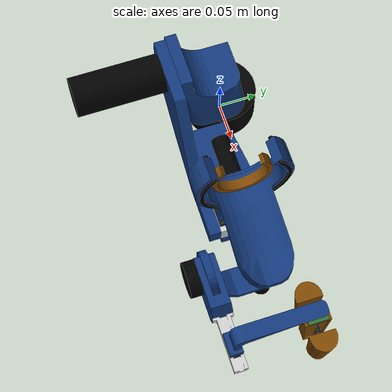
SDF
<?xml version="1.0" ?>
<sdf version="1.6">
	<model name="ForearmRehabIKFast">
		<pose>0.0 0.0 0.0 0.0 0.0 0.0</pose>
		<link name="DummyBase">
			<gravity>true</gravity>
			<self_collide>true</self_collide>
			<pose>0.0 0.0 0.0 0.0 -0.0 0.0</pose>
			<inertial>
				<mass>1.0</mass>
				<inertia>
					<ixx>1.0</ixx>
					<ixy>0.0</ixy>
					<ixz>0.0</ixz>
					<iyy>1.0</iyy>
					<iyz>0.0</iyz>
					<izz>1.0</izz>
				</inertia>
				<pose>0 0 0 0 0 0</pose>
			</inertial>
		</link>
		<link name="BaseAct">
			<gravity>true</gravity>
			<self_collide>true</self_collide>
			<pose>0.0 0.0 0.0 0.0 -0.0 0.0</pose>
			<inertial>
				<mass>1.0</mass>
				<inertia>
					<ixx>1.0</ixx>
					<ixy>0.0</ixy>
					<ixz>0.0</ixz>
					<iyy>1.0</iyy>
					<iyz>0.0</iyz>
					<izz>1.0</izz>
				</inertia>
				<pose>0 0 0 0 0 0</pose>
			</inertial>
			<visual name="VIS_BaseAct">
				<pose>0.0 0.0 0.0 0.0 -0.0 0.0</pose>
				<geometry>
					<mesh>
						<uri>model://ForearmRehabIKFast/meshes/visual/VIS_BaseAct.dae</uri>
						<scale>1.8924493789672852 1.8924492597579956 0.4086342453956604</scale>
					</mesh>
				</geometry>
			</visual>
		</link>
		<link name="BaseLink">
			<gravity>false</gravity>
			<self_collide>false</self_collide>
			<pose>0.0 0.0 0.04500000178813934 0.0 -0.0 0.0</pose>
			<inertial>
				<mass>1.0</mass>
				<inertia>
					<ixx>1.0</ixx>
					<ixy>0.0</ixy>
					<ixz>0.0</ixz>
					<iyy>1.0</iyy>
					<iyz>0.0</iyz>
					<izz>1.0</izz>
				</inertia>
				<pose>0 0 0 0 0 0</pose>
			</inertial>
			<visual name="VIS_BaseLink">
				<pose>-2.60770320892334e-08 2.2351741790771484e-08 -1.862645149230957e-08 0.0 -0.0 0.0</pose>
				<geometry>
					<mesh>
						<uri>model://ForearmRehabIKFast/meshes/visual/VIS_BaseLink.dae</uri>
						<scale>1.0 1.0 1.0</scale>
					</mesh>
				</geometry>
			</visual>
		</link>
		<link name="ElbowWristLink">
			<gravity>true</gravity>
			<self_collide>true</self_collide>
			<pose>0.0004149999876972288 -0.06147899851202965 0.13171099871397018 0.0 -0.0 0.0</pose>
			<inertial>
				<mass>1.0</mass>
				<inertia>
					<ixx>1.0</ixx>
					<ixy>0.0</ixy>
					<ixz>0.0</ixz>
					<iyy>1.0</iyy>
					<iyz>0.0</iyz>
					<izz>1.0</izz>
				</inertia>
				<pose>0 0 0 0 0 0</pose>
			</inertial>
			<visual name="VIS_ElbowWristLink">
				<pose>2.0596780814230442e-07 -3.5390257835388184e-07 -4.3213367462158203e-07 0.0 -0.0 0.0</pose>
				<geometry>
					<mesh>
						<uri>model://ForearmRehabIKFast/meshes/visual/VIS_ElbowWristLink.dae</uri>
						<scale>1.0 1.0 1.0</scale>
					</mesh>
				</geometry>
			</visual>
		</link>
		<link name="Prism1MidSlider">
			<gravity>true</gravity>
			<self_collide>true</self_collide>
			<pose>0.16619099941453896 -0.03283008560538292 0.0677269995212555 0.0 -0.0 0.0</pose>
			<inertial>
				<mass>1.0</mass>
				<inertia>
					<ixx>1.0</ixx>
					<ixy>0.0</ixy>
					<ixz>0.0</ixz>
					<iyy>1.0</iyy>
					<iyz>0.0</iyz>
					<izz>1.0</izz>
				</inertia>
				<pose>0 0 0 0 0 0</pose>
			</inertial>
			<visual name="VIS_Prism1MidSlider">
				<pose>-3.427267074584961e-07 -2.644956111907959e-07 -3.5762786865234375e-07 2.117582368135751e-22 -0.0 3.552713678800501e-15</pose>
				<geometry>
					<mesh>
						<uri>model://ForearmRehabIKFast/meshes/visual/VIS_Prism1MidSlider.dae</uri>
						<scale>1.0 1.0 1.0</scale>
					</mesh>
				</geometry>
			</visual>
		</link>
		<link name="WristLink1">
			<gravity>true</gravity>
			<self_collide>true</self_collide>
			<pose>0.16583301391801797 -0.03283008560538292 0.1623610034584999 0.0 -0.0 0.0</pose>
			<inertial>
				<mass>1.0</mass>
				<inertia>
					<ixx>1.0</ixx>
					<ixy>0.0</ixy>
					<ixz>0.0</ixz>
					<iyy>1.0</iyy>
					<iyz>0.0</iyz>
					<izz>1.0</izz>
				</inertia>
				<pose>0 0 0 0 0 0</pose>
			</inertial>
			<visual name="VIS_WristLink1">
				<pose>-2.5331974029541016e-07 -2.7939677238464355e-07 -8.940696716308594e-07 2.117582368135751e-22 -0.0 3.552713678800501e-15</pose>
				<geometry>
					<mesh>
						<uri>model://ForearmRehabIKFast/meshes/visual/VIS_WristLink1.dae</uri>
						<scale>1.0 1.0 1.0</scale>
					</mesh>
				</geometry>
			</visual>
		</link>
		<link name="WristLink2">
			<gravity>true</gravity>
			<self_collide>true</self_collide>
			<pose>0.26890401807031594 -0.0404411219060421 0.10653501003980637 0.0 -0.0 0.0</pose>
			<inertial>
				<mass>1.0</mass>
				<inertia>
					<ixx>1.0</ixx>
					<ixy>0.0</ixy>
					<ixz>0.0</ixz>
					<iyy>1.0</iyy>
					<iyz>0.0</iyz>
					<izz>1.0</izz>
				</inertia>
				<pose>0 0 0 0 0 0</pose>
			</inertial>
			<visual name="VIS_WristLink2">
				<pose>-2.682209014892578e-07 -3.8370490074157715e-07 -3.7997961044311523e-07 2.117582368135751e-22 -0.0 3.552713678800501e-15</pose>
				<geometry>
					<mesh>
						<uri>model://ForearmRehabIKFast/meshes/visual/VIS_WristLink2.dae</uri>
						<scale>1.0 1.0 1.0</scale>
					</mesh>
				</geometry>
			</visual>
		</link>
		<link name="HandLink">
			<gravity>true</gravity>
			<self_collide>true</self_collide>
			<pose>0.26971702542505227 -0.1064210794866085 0.16885899752378464 0.0 -0.0 0.0</pose>
			<inertial>
				<mass>1.0</mass>
				<inertia>
					<ixx>1.0</ixx>
					<ixy>0.0</ixy>
					<ixz>0.0</ixz>
					<iyy>1.0</iyy>
					<iyz>0.0</iyz>
					<izz>1.0</izz>
				</inertia>
				<pose>0 0 0 0 0 0</pose>
			</inertial>
			<visual name="VIS_HandLink">
				<pose>-2.086162567138672e-07 -9.238719940185547e-07 -2.5331974029541016e-07 -1.2621775988168958e-29 -0.0 2.117582368135751e-22</pose>
				<geometry>
					<mesh>
						<uri>model://ForearmRehabIKFast/meshes/visual/VIS_HandLink.dae</uri>
						<scale>1.1748089790344238 1.0 1.6057640314102173</scale>
					</mesh>
				</geometry>
			</visual>
		</link>
		<link name="Prism2MidSlider">
			<gravity>true</gravity>
			<self_collide>true</self_collide>
			<pose>0.35325701799592935 -0.1064210794866085 0.16885899752378464 0.0 -0.0 0.0</pose>
			<inertial>
				<mass>1.0</mass>
				<inertia>
					<ixx>1.0</ixx>
					<ixy>0.0</ixy>
					<ixz>0.0</ixz>
					<iyy>1.0</iyy>
					<iyz>0.0</iyz>
					<izz>1.0</izz>
				</inertia>
				<pose>0 0 0 0 0 0</pose>
			</inertial>
			<visual name="VIS_Prism2MidSlider">
				<pose>1.1920928955078125e-07 -9.238719940185547e-07 -4.917383193969727e-07 0.0 -0.0 0.0</pose>
				<geometry>
					<mesh>
						<uri>model://ForearmRehabIKFast/meshes/visual/VIS_Prism2MidSlider.dae</uri>
						<scale>1.0 1.0 1.0</scale>
					</mesh>
				</geometry>
			</visual>
		</link>
		<link name="ElasticHinge">
			<gravity>true</gravity>
			<self_collide>true</self_collide>
			<pose>0.35325701799592935 -0.016268040984869003 0.1982870027422905 0.0 -0.0 0.0</pose>
			<inertial>
				<mass>1.0</mass>
				<inertia>
					<ixx>1.0</ixx>
					<ixy>0.0</ixy>
					<ixz>0.0</ixz>
					<iyy>1.0</iyy>
					<iyz>0.0</iyz>
					<izz>1.0</izz>
				</inertia>
				<pose>0 0 0 0 0 0</pose>
			</inertial>
			<visual name="VIS_ElasticHinge">
				<pose>-1.1920928955078125e-07 -4.5634806156158447e-07 -1.043081283569336e-07 0.0 -0.0 0.0</pose>
				<geometry>
					<mesh>
						<uri>model://ForearmRehabIKFast/meshes/visual/VIS_ElasticHinge.dae</uri>
						<scale>1.0 1.0 1.0</scale>
					</mesh>
				</geometry>
			</visual>
		</link>
		<link name="HandInterface">
			<gravity>true</gravity>
			<self_collide>true</self_collide>
			<pose>0.35332601037225686 -0.016268040984869003 0.15966900438070297 0.0 -0.0 0.0</pose>
			<inertial>
				<mass>1.0</mass>
				<inertia>
					<ixx>1.0</ixx>
					<ixy>0.0</ixy>
					<ixz>0.0</ixz>
					<iyy>1.0</iyy>
					<iyz>0.0</iyz>
					<izz>1.0</izz>
				</inertia>
				<pose>0 0 0 0 0 0</pose>
			</inertial>
			<visual name="VIS_HandInterface">
				<pose>-3.2782554626464844e-07 -4.507601261138916e-07 4.470348358154297e-08 0.0 -0.0 0.0</pose>
				<geometry>
					<mesh>
						<uri>model://ForearmRehabIKFast/meshes/visual/VIS_HandInterface.dae</uri>
						<scale>1.0 1.0 1.0</scale>
					</mesh>
				</geometry>
			</visual>
		</link>
		<joint name="BaseAct_joint" type="fixed">
			<parent>DummyBase</parent>
			<child>BaseAct</child>
			<axis>
				<xyz>0.0 0.0 1.0</xyz>
				<dynamics>
					<damping>0.0</damping>
					<friction>0.0</friction>
					<spring_reference>0.0</spring_reference>
					<spring_stiffness>0.0</spring_stiffness>
				</dynamics>
			</axis>
			<physics>
				<ode>
					<cfm_damping>false</cfm_damping>
					<implicit_spring_damper>false</implicit_spring_damper>
					<cfm>0.0</cfm>
					<erp>0.20000000298023224</erp>
				</ode>
			</physics>
		</joint>
		<joint name="BaseLink_joint" type="revolute">
			<parent>BaseAct</parent>
			<child>BaseLink</child>
			<axis>
				<xyz>0.0 0.0 1.0</xyz>
				<dynamics>
					<damping>0.0</damping>
					<friction>0.0</friction>
					<spring_reference>0.0</spring_reference>
					<spring_stiffness>0.0</spring_stiffness>
				</dynamics>
				<limit>
					<lower>-0.3490658503988659</lower>
					<upper>1.5707963267948966</upper>
				</limit>
			</axis>
			<physics>
				<ode>
					<cfm_damping>false</cfm_damping>
					<implicit_spring_damper>false</implicit_spring_damper>
					<cfm>0.0</cfm>
					<erp>0.20000000298023224</erp>
				</ode>
			</physics>
		</joint>
		<joint name="ElbowWristLink_joint" type="revolute">
			<parent>BaseLink</parent>
			<child>ElbowWristLink</child>
			<axis>
				<xyz>0.0 1.0 0.0</xyz>
				<dynamics>
					<damping>0.0</damping>
					<friction>0.0</friction>
					<spring_reference>0.0</spring_reference>
					<spring_stiffness>0.0</spring_stiffness>
				</dynamics>
				<limit>
					<lower>-2.2689280275926285</lower>
					<upper>0.0</upper>
				</limit>
			</axis>
			<physics>
				<ode>
					<cfm_damping>false</cfm_damping>
					<implicit_spring_damper>false</implicit_spring_damper>
					<cfm>0.0</cfm>
					<erp>0.20000000298023224</erp>
				</ode>
			</physics>
		</joint>
		<joint name="Prism1MidSlider_joint" type="fixed">
			<parent>ElbowWristLink</parent>
			<child>Prism1MidSlider</child>
			<axis>
				<xyz>1.0 0.0 0.0</xyz>
				<dynamics>
					<damping>0.0</damping>
					<friction>0.0</friction>
					<spring_reference>0.0</spring_reference>
					<spring_stiffness>0.0</spring_stiffness>
				</dynamics>
			</axis>
			<physics>
				<ode>
					<cfm_damping>false</cfm_damping>
					<implicit_spring_damper>false</implicit_spring_damper>
					<cfm>0.0</cfm>
					<erp>0.20000000298023224</erp>
				</ode>
			</physics>
		</joint>
		<joint name="WristLink1_joint" type="revolute">
			<parent>Prism1MidSlider</parent>
			<child>WristLink1</child>
			<axis>
				<xyz>1.0 0.0 0.0</xyz>
				<dynamics>
					<damping>0.0</damping>
					<friction>0.0</friction>
					<spring_reference>0.0</spring_reference>
					<spring_stiffness>0.0</spring_stiffness>
				</dynamics>
				<limit>
					<lower>-1.5707963267948966</lower>
					<upper>1.5707963267948966</upper>
				</limit>
			</axis>
			<physics>
				<ode>
					<cfm_damping>false</cfm_damping>
					<implicit_spring_damper>false</implicit_spring_damper>
					<cfm>0.0</cfm>
					<erp>0.20000000298023224</erp>
				</ode>
			</physics>
		</joint>
		<joint name="WristLink2_joint" type="revolute">
			<parent>WristLink1</parent>
			<child>WristLink2</child>
			<axis>
				<xyz>0.0 0.0 1.0</xyz>
				<dynamics>
					<damping>0.0</damping>
					<friction>0.0</friction>
					<spring_reference>0.0</spring_reference>
					<spring_stiffness>0.0</spring_stiffness>
				</dynamics>
				<limit>
					<lower>-0.9599310885968813</lower>
					<upper>1.2217304763960306</upper>
				</limit>
			</axis>
			<physics>
				<ode>
					<cfm_damping>false</cfm_damping>
					<implicit_spring_damper>false</implicit_spring_damper>
					<cfm>0.0</cfm>
					<erp>0.20000000298023224</erp>
				</ode>
			</physics>
		</joint>
		<joint name="HandLink_joint" type="revolute">
			<parent>WristLink2</parent>
			<child>HandLink</child>
			<axis>
				<xyz>0.0 1.0 0.0</xyz>
				<dynamics>
					<damping>0.0</damping>
					<friction>0.0</friction>
					<spring_reference>0.0</spring_reference>
					<spring_stiffness>0.0</spring_stiffness>
				</dynamics>
				<limit>
					<lower>-0.4363323129985824</lower>
					<upper>0.17453292519943295</upper>
				</limit>
			</axis>
			<physics>
				<ode>
					<cfm_damping>false</cfm_damping>
					<implicit_spring_damper>false</implicit_spring_damper>
					<cfm>0.0</cfm>
					<erp>0.20000000298023224</erp>
				</ode>
			</physics>
		</joint>
		<joint name="Prism2MidSlider_joint" type="fixed">
			<parent>HandLink</parent>
			<child>Prism2MidSlider</child>
			<axis>
				<xyz>1.0 0.0 0.0</xyz>
				<dynamics>
					<damping>0.0</damping>
					<friction>0.0</friction>
					<spring_reference>0.0</spring_reference>
					<spring_stiffness>0.0</spring_stiffness>
				</dynamics>
			</axis>
			<physics>
				<ode>
					<cfm_damping>false</cfm_damping>
					<implicit_spring_damper>false</implicit_spring_damper>
					<cfm>0.0</cfm>
					<erp>0.20000000298023224</erp>
				</ode>
			</physics>
		</joint>
		<joint name="ElasticHinge_joint" type="revolute">
			<parent>Prism2MidSlider</parent>
			<child>ElasticHinge</child>
			<axis>
				<xyz>0.0 1.0 0.0</xyz>
				<dynamics>
					<damping>0.0</damping>
					<friction>0.0</friction>
					<spring_reference>0.0</spring_reference>
					<spring_stiffness>0.0</spring_stiffness>
				</dynamics>
				<limit>
					<lower>-0.08726646259971647</lower>
					<upper>0.08726646259971647</upper>
				</limit>
			</axis>
			<physics>
				<ode>
					<cfm_damping>false</cfm_damping>
					<implicit_spring_damper>false</implicit_spring_damper>
					<cfm>0.0</cfm>
					<erp>0.20000000298023224</erp>
				</ode>
			</physics>
		</joint>
		<joint name="HandInterface_joint" type="fixed">
			<parent>ElasticHinge</parent>
			<child>HandInterface</child>
			<axis>
				<xyz>0.0 0.0 1.0</xyz>
				<dynamics>
					<damping>0.0</damping>
					<friction>0.0</friction>
					<spring_reference>0.0</spring_reference>
					<spring_stiffness>0.0</spring_stiffness>
				</dynamics>
			</axis>
			<physics>
				<ode>
					<cfm_damping>false</cfm_damping>
					<implicit_spring_damper>false</implicit_spring_damper>
					<cfm>0.0</cfm>
					<erp>0.20000000298023224</erp>
				</ode>
			</physics>
		</joint>
	</model>
</sdf>
